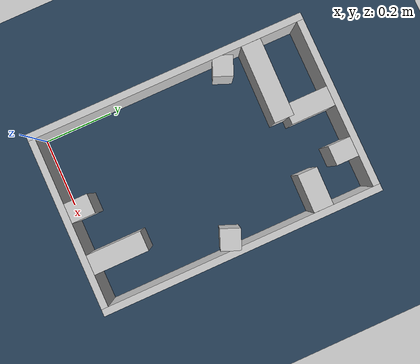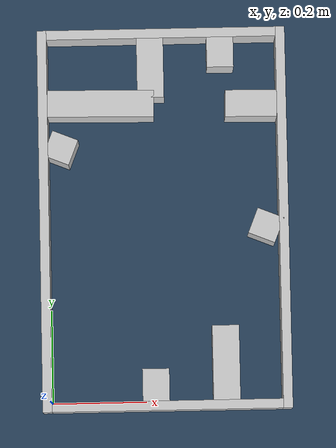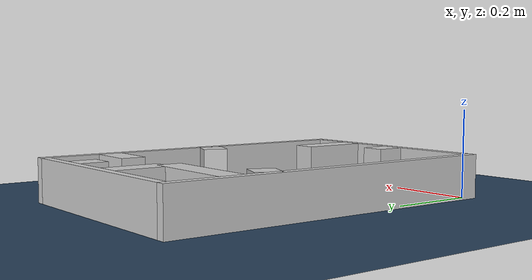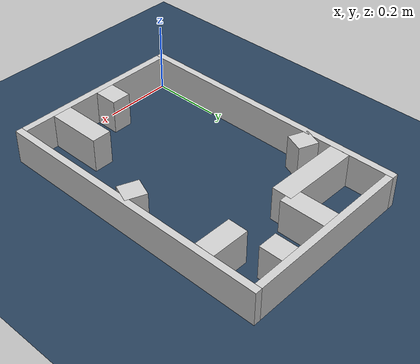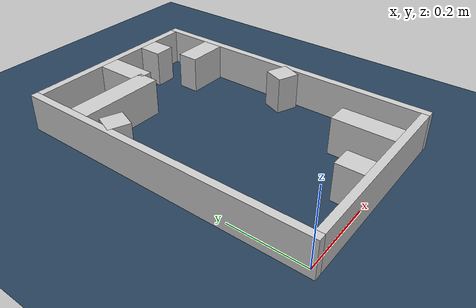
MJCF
<?xml version="1.0" ?>
<mujoco model="generated_real_template">
  <compiler angle="degree"/>
  <option timestep="0.002" integrator="implicitfast" iterations="100" cone="elliptic"/>
  <default>
    <geom density="1"/>
  </default>
  <asset>
    <texture builtin="gradient" height="3072" rgb1="0.3 0.5 0.7" rgb2="0 0 0" type="skybox" width="512"/>
    <texture builtin="checker" height="300" mark="edge" markrgb="0.8 0.8 0.8" name="groundplane" rgb1="0.2 0.3 0.4" rgb2="0.1 0.2 0.3" type="2d" width="300"/>
    <material name="groundplane" reflectance="0.2" texrepeat="5 5" texture="groundplane" texuniform="true"/>
  </asset>
  <worldbody>
    <light dir="0 0 -1" directional="true" pos="0 0 1.5"/>
    <geom name="floor" type="plane" condim="4" friction="0.5 0.005 0.001" material="groundplane" size="0 0 0.05"/>
    <body name="walls">
      <geom name="wall_boundary_left" type="box" condim="4" friction="1.0 0.005 0.0001" rgba="0.8 0.8 0.8 1" pos="-0.010000 0.387500 0.050000" euler="0 0 0.000000" size="0.010000 0.407500 0.050000"/>
      <geom name="wall_boundary_right" type="box" condim="4" friction="1.0 0.005 0.0001" rgba="0.8 0.8 0.8 1" pos="0.500000 0.387500 0.050000" euler="0 0 0.000000" size="0.010000 0.407500 0.050000"/>
      <geom name="wall_boundary_bottom" type="box" condim="4" friction="1.0 0.005 0.0001" rgba="0.8 0.8 0.8 1" pos="0.245000 -0.010000 0.050000" euler="0 0 0.000000" size="0.245000 0.010000 0.050000"/>
      <geom name="wall_boundary_top" type="box" condim="4" friction="1.0 0.005 0.0001" rgba="0.8 0.8 0.8 1" pos="0.245000 0.785000 0.050000" euler="0 0 0.000000" size="0.245000 0.010000 0.050000"/>
      <geom name="wall_inner_1_1" type="box" condim="4" friction="1.0 0.005 0.0001" rgba="0.8 0.8 0.8 1" pos="0.113674 0.635973 0.050000" euler="0 0 -0.930937" size="0.113689 0.028500 0.050000"/>
      <geom name="wall_inner_1_2" type="box" condim="4" friction="1.0 0.005 0.0001" rgba="0.8 0.8 0.8 1" pos="0.434857 0.630754 0.050000" euler="0 0 -0.930937" size="0.055151 0.028500 0.050000"/>
      <geom name="wall_inner_2_1" type="box" condim="4" friction="1.0 0.005 0.0001" rgba="0.8 0.8 0.8 1" pos="0.221130 0.034103 0.050000" euler="0 0 90.000000" size="0.034103 0.028500 0.050000"/>
      <geom name="wall_inner_2_2" type="box" condim="4" friction="1.0 0.005 0.0001" rgba="0.8 0.8 0.8 1" pos="0.221130 0.711182 0.050000" euler="0 0 90.000000" size="0.063818 0.028500 0.050000"/>
      <geom name="wall_inner_3_1" type="box" condim="4" friction="1.0 0.005 0.0001" rgba="0.8 0.8 0.8 1" pos="0.462064 0.368815 0.050000" euler="0 0 158.212679" size="0.030085 0.028500 0.050000"/>
      <geom name="wall_inner_3_2" type="box" condim="4" friction="1.0 0.005 0.0001" rgba="0.8 0.8 0.8 1" pos="0.027077 0.542686 0.050000" euler="0 0 158.212679" size="0.029160 0.028500 0.050000"/>
      <geom name="wall_inner_4_1" type="box" condim="4" friction="1.0 0.005 0.0001" rgba="0.8 0.8 0.8 1" pos="0.370932 0.078907 0.050000" euler="0 0 90.000000" size="0.078907 0.028500 0.050000"/>
      <geom name="wall_inner_4_2" type="box" condim="4" friction="1.0 0.005 0.0001" rgba="0.8 0.8 0.8 1" pos="0.370932 0.742604 0.050000" euler="0 0 90.000000" size="0.032396 0.028500 0.050000"/>
    </body>
  </worldbody>
</mujoco>
